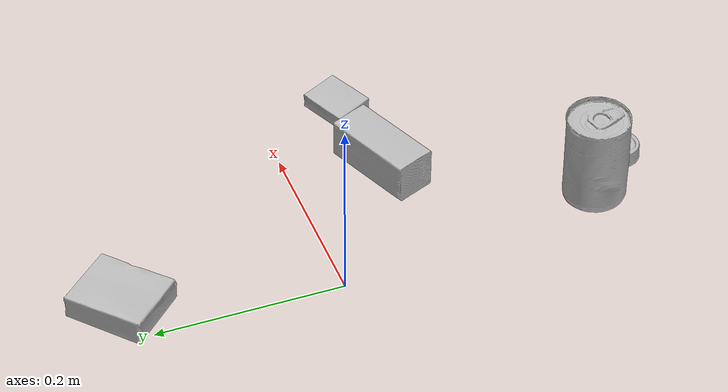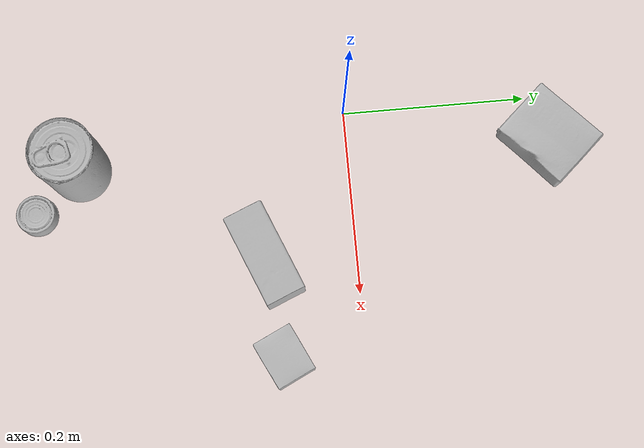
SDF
<sdf version="1.4">
  <world name="default">
    <light name="light1" type="point">
      <pose>0 0 1 0 0 0</pose>
      <diffuse>3 3 3 1</diffuse>
      <specular>3 3 3 1</specular>
    </light>
    <light name="light2" type="point">
      <pose>0 0.5 2 0 0 0</pose>
      <diffuse>1 1 1 1</diffuse>
      <specular>1 1 1 1</specular>
    </light>
    <light name="light3" type="point">
      <pose>0 0.5 2 0 0 0</pose>
      <diffuse>3 3 3 1</diffuse>
      <specular>3 3 3 1</specular>
    </light>
    <scene>
      <ambient>0.7 0.7 0.7</ambient>
    </scene>
    <model name="box1">
      <link name="link_box1">
        <collision name="default">
          <geometry>
            <mesh>
              <uri>model://pudding_box/collision_meshes/collision.obj</uri>
              <scale>0.5 0.5 0.5</scale>
            </mesh>
          </geometry>
          <surface>
            <friction>
              <ode>
                <mu>0.5</mu>
                <mu2>0.5</mu2>
              </ode>
            </friction>
          <contact>
        <ode>
            <max_vel>0</max_vel>
            <min_depth>0.0001</min_depth>
            <kp>1e8</kp>
        </ode>
    </contact></surface>
        </collision>
        <visual name="default">
          <geometry>
            <mesh>
              <uri>model://pudding_box/visual_meshes/visual.dae</uri>
              <scale>0.5 0.5 0.5</scale>
            </mesh>
          </geometry>
        </visual>
        <inertial>
          <mass>0.049221161752939224</mass>
          <pose>0.00024474109522998333 0.00040339428232982755 -0.0002594413817860186 0.005213101772454675 -0.006603800120423707 0.020079827019105066</pose>
          <inertia>
            <ixx>1.3910499e-05</ixx>
            <iyy>9.3590825e-06</iyy>
            <izz>2.0542482e-05</izz>
            <ixy>0</ixy>
            <ixz>0</ixz>
            <iyz>0</iyz>
          </inertia>
        </inertial>
      </link>
      <pose>0.260875940322876 -0.08626919239759445 0.009862903505563736 0.022348618897509203 -0.011391654134523598 -1.1212105004831718</pose>
    </model>
    <model name="box2">
      <link name="link_box2">
        <collision name="default">
          <geometry>
            <mesh>
              <uri>model://gelatin_box/collision_meshes/collision.obj</uri>
              <scale>1.0 1.0 1.0</scale>
            </mesh>
          </geometry>
          <surface>
            <friction>
              <ode>
                <mu>0.5</mu>
                <mu2>0.5</mu2>
              </ode>
            </friction>
          <contact>
        <ode>
            <max_vel>0</max_vel>
            <min_depth>0.0001</min_depth>
            <kp>1e8</kp>
        </ode>
    </contact></surface>
        </collision>
        <visual name="default">
          <geometry>
            <mesh>
              <uri>model://gelatin_box/visual_meshes/visual.dae</uri>
              <scale>1.0 1.0 1.0</scale>
            </mesh>
          </geometry>
        </visual>
        <inertial>
          <mass>0.1975366622209549</mass>
          <pose>0.000431961816502735 0.00011156871187267825 -0.00036403207923285663 -0.0010503719683328595 -0.0047558182256164224 0.016440557608480007</pose>
          <inertia>
            <ixx>0.00013944478</ixx>
            <iyy>9.960467e-05</iyy>
            <izz>0.00021226601</izz>
            <ixy>0</ixy>
            <ixz>0</ixz>
            <iyz>0</iyz>
          </inertia>
        </inertial>
      </link>
      <pose>0.047078412026166916 0.21943651139736176 0.015168309211730957 0.005597357474394355 -0.007304443149910472 -0.8376453490851459</pose>
    </model>
    <model name="box3">
      <link name="link_box3">
        <collision name="default">
          <geometry>
            <mesh>
              <uri>model://wood_block/collision_meshes/collision.obj</uri>
              <scale>0.5 0.5 0.5</scale>
            </mesh>
          </geometry>
          <surface>
            <friction>
              <ode>
                <mu>0.5</mu>
                <mu2>0.5</mu2>
              </ode>
            </friction>
          <contact>
        <ode>
            <max_vel>0</max_vel>
            <min_depth>0.0001</min_depth>
            <kp>1e8</kp>
        </ode>
    </contact></surface>
        </collision>
        <visual name="default">
          <geometry>
            <mesh>
              <uri>model://wood_block/visual_meshes/visual.dae</uri>
              <scale>0.5 0.5 0.5</scale>
            </mesh>
          </geometry>
        </visual>
        <inertial>
          <mass>0.2799808979034424</mass>
          <pose>-2.9066577553749084e-06 -0.000285404734313488 0.00013204291462898254 -0.05220811074253327 -0.005192695744074178 -0.0068613776969266935</pose>
          <inertia>
            <ixx>9.3664195e-05</ixx>
            <iyy>0.0002958853</iyy>
            <izz>0.00029477844</izz>
            <ixy>0</ixy>
            <ixz>0</ixz>
            <iyz>0</iyz>
          </inertia>
        </inertial>
      </link>
      <pose>0.15372048318386078 -0.09805630892515182 0.0226292684674263 -0.0052084043664692645 0.005718676895783106 -2.747466466769736</pose>
    </model>
    <model name="can1">
      <link name="link_can1">
        <collision name="default">
          <geometry>
            <mesh>
              <uri>model://tomato_soup_can/collision_meshes/collision.obj</uri>
              <scale>1.0 1.0 1.0</scale>
            </mesh>
          </geometry>
          <surface>
            <friction>
              <ode>
                <mu>0.5</mu>
                <mu2>0.5</mu2>
              </ode>
            </friction>
          <contact>
        <ode>
            <max_vel>0</max_vel>
            <min_depth>0.0001</min_depth>
            <kp>1e8</kp>
        </ode>
    </contact></surface>
        </collision>
        <visual name="default">
          <geometry>
            <mesh>
              <uri>model://tomato_soup_can/visual_meshes/visual.dae</uri>
              <scale>1.0 1.0 1.0</scale>
            </mesh>
          </geometry>
        </visual>
        <inertial>
          <mass>0.35683923959732056</mass>
          <pose>0.00012652271834667772 0.00010805513738887385 -0.0017973982030525804 0.007020067402313596 0.00042299257688944205 -0.009903281374499336</pose>
          <inertia>
            <ixx>0.0003912439</ixx>
            <iyy>0.00038898273</iyy>
            <izz>0.00020277809</izz>
            <ixy>0</ixy>
            <ixz>0</ixz>
            <iyz>0</iyz>
          </inertia>
        </inertial>
      </link>
      <pose>0.042431559413671494 -0.29058751463890076 0.051273997873067856 -3.804707223380108e-07 -3.3730400343269116e-07 -0.033268715776152556</pose>
    </model>
    <model name="can2">
      <link name="link_can2">
        <collision name="default">
          <geometry>
            <mesh>
              <uri>model://tuna_fish_can/collision_meshes/collision.obj</uri>
              <scale>0.5 0.5 0.5</scale>
            </mesh>
          </geometry>
          <surface>
            <friction>
              <ode>
                <mu>0.5</mu>
                <mu2>0.5</mu2>
              </ode>
            </friction>
          <contact>
        <ode>
            <max_vel>0</max_vel>
            <min_depth>0.0001</min_depth>
            <kp>1e8</kp>
        </ode>
    </contact></surface>
        </collision>
        <visual name="default">
          <geometry>
            <mesh>
              <uri>model://tuna_fish_can/visual_meshes/visual.dae</uri>
              <scale>0.5 0.5 0.5</scale>
            </mesh>
          </geometry>
        </visual>
        <inertial>
          <mass>0.011508840136229992</mass>
          <pose>-2.0362092982395552e-05 -7.256176559167216e-06 -0.0005269026150926948 -0.0017944756095399476 0.0001716207335623094 0.24053890436657652</pose>
          <inertia>
            <ixx>1.5560124e-06</ixx>
            <iyy>1.5495272e-06</iyy>
            <izz>2.662559e-06</izz>
            <ixy>0</ixy>
            <ixz>0</ixz>
            <iyz>0</iyz>
          </inertia>
        </inertial>
      </link>
      <pose>0.08748330175876617 -0.33919841051101685 0.008542006835341454 -3.141589851245921 -7.625466809587828e-07 -2.3479439595927865</pose>
    </model>
  <physics type="ode">
      <max_contacts>50</max_contacts>
      <ode>
        <solver>
          <type>quick</type>
          <iters>75</iters>
        </solver>
        <constraints>
          <contact_max_correcting_vel>0</contact_max_correcting_vel>
          <contact_surface_layer>0</contact_surface_layer>
        </constraints>
      </ode>
    </physics></world>
</sdf>
